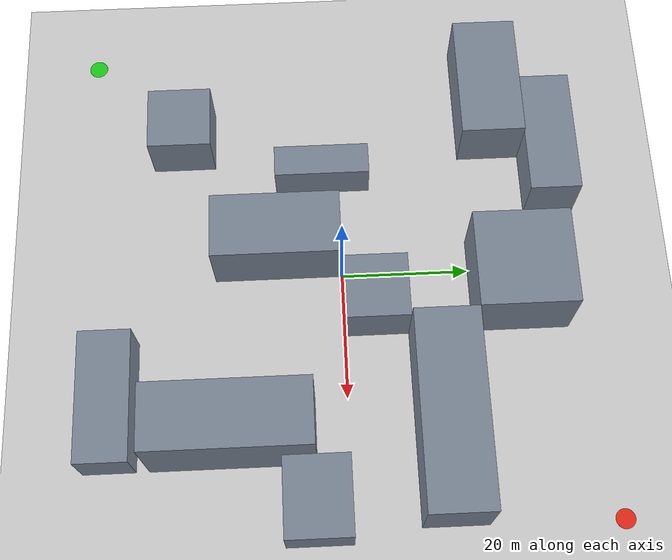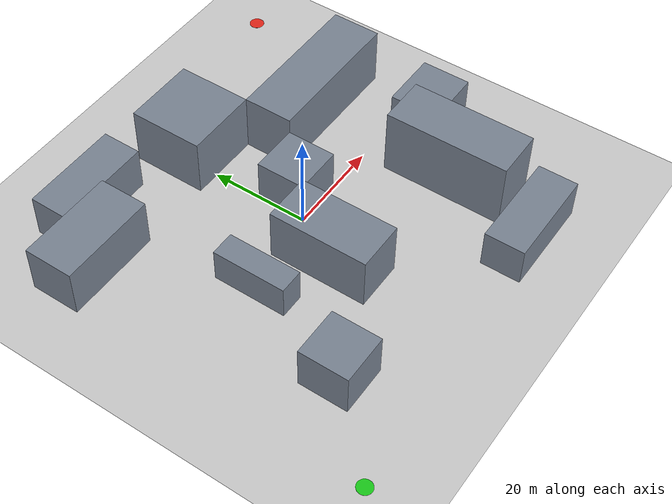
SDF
<?xml version="1.0"?>
<sdf version="1.6"><world name="logistics_3_dense_facilities">
  <physics name="default_physics" type="ode"><max_step_size>0.004</max_step_size><real_time_factor>1</real_time_factor><real_time_update_rate>250</real_time_update_rate><magnetic_field>6.0e-6 2.3e-5 -4.2e-5</magnetic_field></physics>
  <gravity>0 0 -9.8066</gravity>
  <include><uri>model://sun</uri></include>
  <include><uri>model://ground_plane</uri></include>
  <spherical_coordinates><surface_model>EARTH_WGS84</surface_model><latitude_deg>47.397742</latitude_deg><longitude_deg>8.545594</longitude_deg><elevation>488</elevation><heading_deg>0</heading_deg></spherical_coordinates>
<model name="obstacle_00_facility_1"><static>true</static><pose>-25.000 -25.000 4.500 0 0 0</pose><link name="link"><collision name="collision"><geometry><box><size>10.000 10.000 9.000</size></box></geometry></collision><visual name="visual"><geometry><box><size>10.000 10.000 9.000</size></box></geometry><material><ambient>0.48 0.52 0.58 1</ambient><diffuse>0.48 0.52 0.58 1</diffuse></material></visual></link></model>
<model name="obstacle_01_facility_2"><static>true</static><pose>25.000 15.000 6.000 0 0 0</pose><link name="link"><collision name="collision"><geometry><box><size>30.000 10.000 12.000</size></box></geometry></collision><visual name="visual"><geometry><box><size>30.000 10.000 12.000</size></box></geometry><material><ambient>0.48 0.52 0.58 1</ambient><diffuse>0.48 0.52 0.58 1</diffuse></material></visual></link></model>
<model name="obstacle_02_facility_3"><static>true</static><pose>20.000 -36.000 4.000 0 0 0</pose><link name="link"><collision name="collision"><geometry><box><size>20.000 8.000 8.000</size></box></geometry></collision><visual name="visual"><geometry><box><size>20.000 8.000 8.000</size></box></geometry><material><ambient>0.48 0.52 0.58 1</ambient><diffuse>0.48 0.52 0.58 1</diffuse></material></visual></link></model>
<model name="obstacle_03_facility_4"><static>true</static><pose>-30.000 25.000 5.000 0 0 0</pose><link name="link"><collision name="collision"><geometry><box><size>20.000 10.000 10.000</size></box></geometry></collision><visual name="visual"><geometry><box><size>20.000 10.000 10.000</size></box></geometry><material><ambient>0.48 0.52 0.58 1</ambient><diffuse>0.48 0.52 0.58 1</diffuse></material></visual></link></model>
<model name="obstacle_04_facility_5"><static>true</static><pose>-17.500 -2.500 3.500 0 0 0</pose><link name="link"><collision name="collision"><geometry><box><size>5.000 15.000 7.000</size></box></geometry></collision><visual name="visual"><geometry><box><size>5.000 15.000 7.000</size></box></geometry><material><ambient>0.48 0.52 0.58 1</ambient><diffuse>0.48 0.52 0.58 1</diffuse></material></visual></link></model>
<model name="obstacle_05_facility_6"><static>true</static><pose>-5.000 -10.000 5.500 0 0 0</pose><link name="link"><collision name="collision"><geometry><box><size>10.000 20.000 11.000</size></box></geometry></collision><visual name="visual"><geometry><box><size>10.000 20.000 11.000</size></box></geometry><material><ambient>0.48 0.52 0.58 1</ambient><diffuse>0.48 0.52 0.58 1</diffuse></material></visual></link></model>
<model name="obstacle_06_facility_7"><static>true</static><pose>5.000 5.000 4.500 0 0 0</pose><link name="link"><collision name="collision"><geometry><box><size>10.000 10.000 9.000</size></box></geometry></collision><visual name="visual"><geometry><box><size>10.000 10.000 9.000</size></box></geometry><material><ambient>0.48 0.52 0.58 1</ambient><diffuse>0.48 0.52 0.58 1</diffuse></material></visual></link></model>
<model name="obstacle_07_facility_8"><static>true</static><pose>25.000 -17.500 7.000 0 0 0</pose><link name="link"><collision name="collision"><geometry><box><size>10.000 25.000 14.000</size></box></geometry></collision><visual name="visual"><geometry><box><size>10.000 25.000 14.000</size></box></geometry><material><ambient>0.48 0.52 0.58 1</ambient><diffuse>0.48 0.52 0.58 1</diffuse></material></visual></link></model>
<model name="obstacle_08_facility_9"><static>true</static><pose>36.000 -5.000 4.000 0 0 0</pose><link name="link"><collision name="collision"><geometry><box><size>12.000 10.000 8.000</size></box></geometry></collision><visual name="visual"><geometry><box><size>12.000 10.000 8.000</size></box></geometry><material><ambient>0.48 0.52 0.58 1</ambient><diffuse>0.48 0.52 0.58 1</diffuse></material></visual></link></model>
<model name="obstacle_09_facility_10"><static>true</static><pose>-20.000 34.000 4.500 0 0 0</pose><link name="link"><collision name="collision"><geometry><box><size>20.000 8.000 9.000</size></box></geometry></collision><visual name="visual"><geometry><box><size>20.000 8.000 9.000</size></box></geometry><material><ambient>0.48 0.52 0.58 1</ambient><diffuse>0.48 0.52 0.58 1</diffuse></material></visual></link></model>
<model name="obstacle_10_facility_11"><static>true</static><pose>2.500 27.500 6.000 0 0 0</pose><link name="link"><collision name="collision"><geometry><box><size>15.000 15.000 12.000</size></box></geometry></collision><visual name="visual"><geometry><box><size>15.000 15.000 12.000</size></box></geometry><material><ambient>0.48 0.52 0.58 1</ambient><diffuse>0.48 0.52 0.58 1</diffuse></material></visual></link></model>
<model name="start_zone"><static>true</static><pose>-40.000 -40.000 -0.009 0 0 0</pose><link name="link"><visual name="visual"><cast_shadows>false</cast_shadows><geometry><cylinder><radius>1.5</radius><length>0.02</length></cylinder></geometry><material><ambient>0.1 0.8 0.1 1</ambient><diffuse>0.1 0.8 0.1 1</diffuse></material></visual></link></model>
<model name="goal_zone"><static>true</static><pose>40.000 40.000 -0.009 0 0 0</pose><link name="link"><visual name="visual"><cast_shadows>false</cast_shadows><geometry><cylinder><radius>1.5</radius><length>0.02</length></cylinder></geometry><material><ambient>0.9 0.15 0.1 1</ambient><diffuse>0.9 0.15 0.1 1</diffuse></material></visual></link></model>
</world></sdf>
